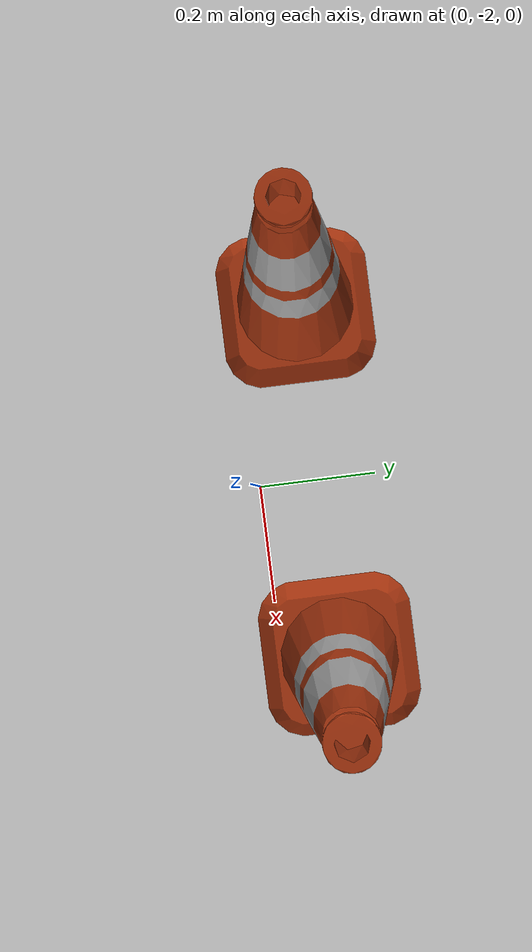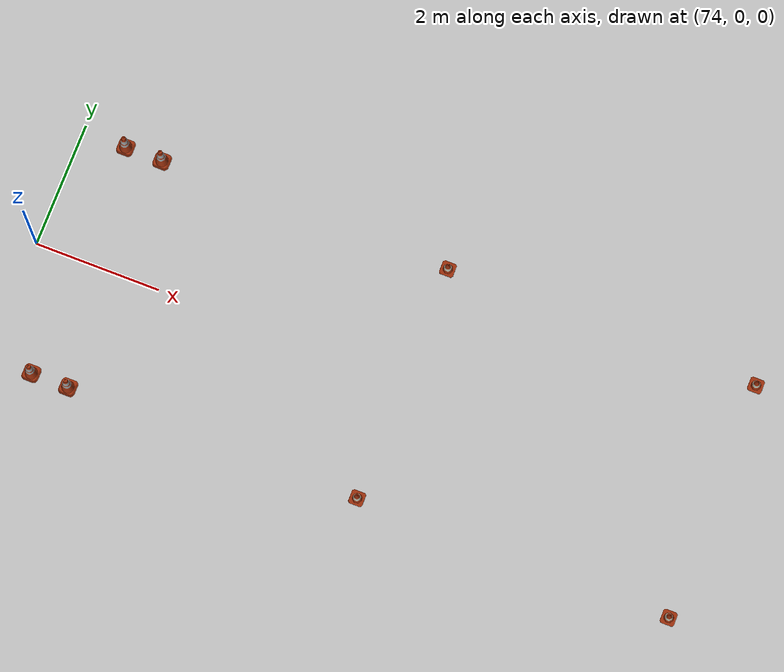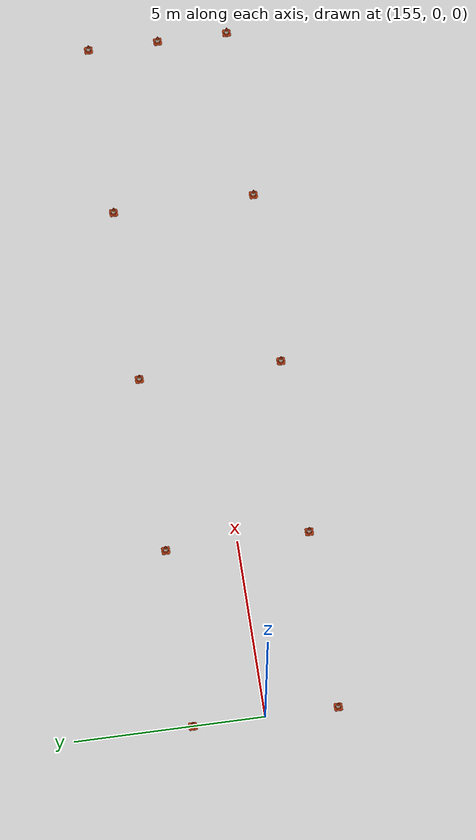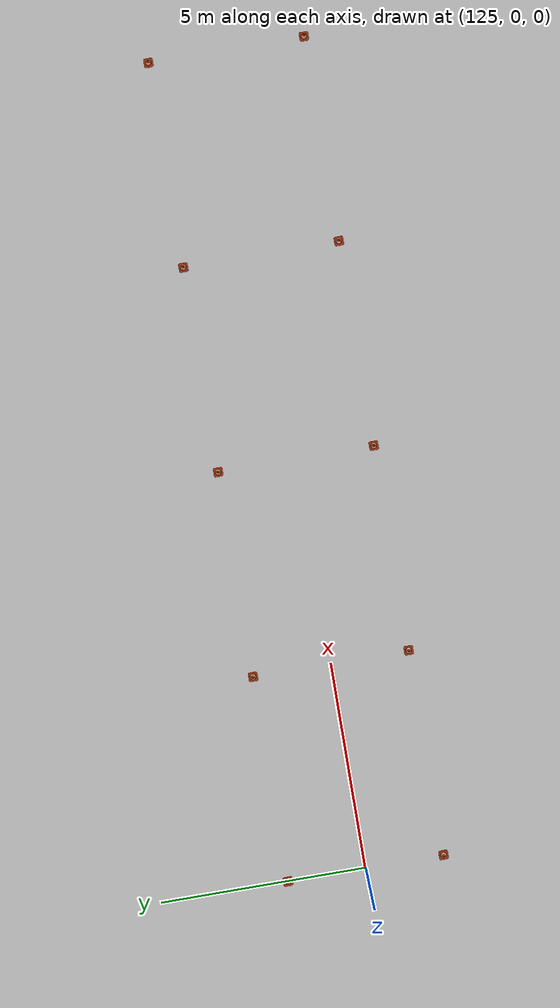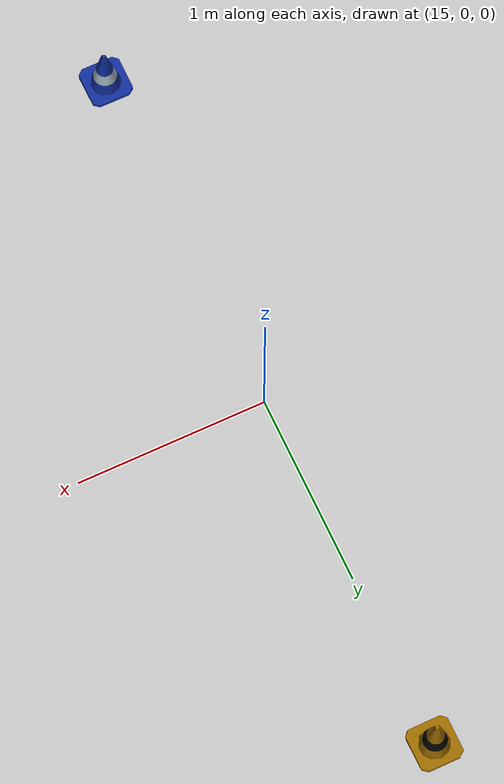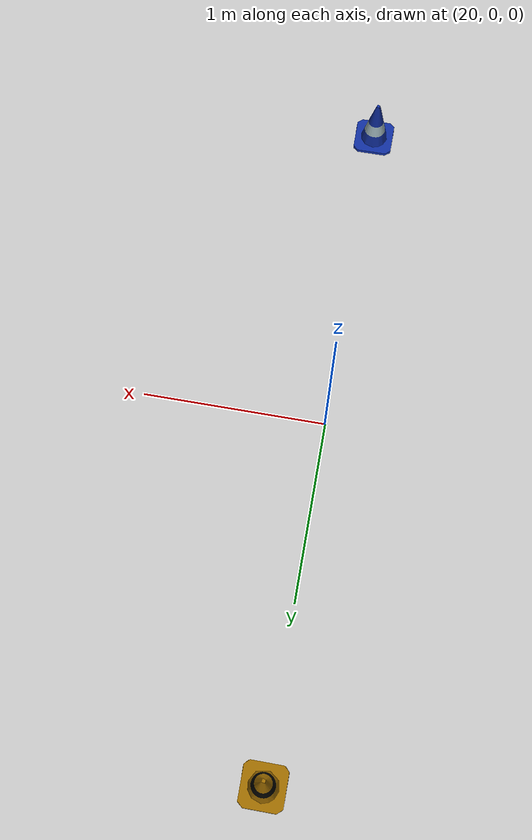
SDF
<?xml version="1.0"?>
<sdf version="1.8">
    <world name="acceleration">

        <scene>
            <grid>false</grid>
        </scene>

        <plugin
            filename="gz-sim-physics-system"
            name="gz::sim::systems::Physics">
        </plugin>

        <plugin
            filename="gz-sim-user-commands-system"
            name="gz::sim::systems::UserCommands">
        </plugin>

        <plugin
            filename="gz-sim-scene-broadcaster-system"
            name="gz::sim::systems::SceneBroadcaster">
        </plugin>

        <plugin
            filename="gz-sim-contact-system"
            name="gz::sim::systems::Contact">
        </plugin>

        <plugin
            filename="gz-sim-sensors-system"
            name="gz::sim::systems::Sensors">
        </plugin>

        <physics name="physics_ode_1ms" type="ode">
            <max_step_size>0.01</max_step_size>
            <real_time_factor>1.0</real_time_factor>
        </physics>

        <gui fullscreen="0">
            <!-- 3D scene -->
            <plugin filename="MinimalScene" name="3D View">
                <gz-gui>
                    <title>3D View</title>
                    <property type="bool" key="showTitleBar">false</property>
                    <property type="string" key="state">docked</property>
                </gz-gui>

                <engine>ogre2</engine>
                <scene>scene</scene>
                <ambient_light>0.4 0.4 0.4</ambient_light>
                <background_color>0.8 0.8 0.8</background_color>
                <camera_pose>-6 0 6 0 0.5 0</camera_pose>
                <camera_clip>
                    <near>0.25</near>
                    <far>25000</far>
                </camera_clip>
            </plugin>

            <plugin filename="GzSceneManager" name="Scene Manager">
                <gz-gui>
                    <property key="resizable" type="bool">false</property>
                    <property key="width" type="double">5</property>
                    <property key="height" type="double">5</property>
                    <property key="state" type="string">floating</property>
                    <property key="showTitleBar" type="bool">false</property>
                </gz-gui>
            </plugin>

            <!-- World control -->
            <plugin filename="WorldControl" name="World control">
                <gz-gui>
                    <title>World control</title>
                    <property type="bool" key="showTitleBar">false</property>
                    <property type="bool" key="resizable">false</property>
                    <property type="double" key="height">72</property>
                    <property type="double" key="width">121</property>
                    <property type="double" key="z">1</property>

                    <property type="string" key="state">floating</property>
                    <anchors target="3D View">
                        <line own="left" target="left" />
                        <line own="bottom" target="bottom" />
                    </anchors>
                </gz-gui>

                <play_pause>true</play_pause>
                <step>true</step>
                <start_paused>false</start_paused>
                <service>/world/acceleration/control</service>
                <stats_topic>/world/acceleration/stats</stats_topic>
            </plugin>

            <!-- Entity tree -->
            <plugin filename="EntityTree" name="Entity tree">
            </plugin>

        </gui>

        <light type="directional" name="sun">
            <cast_shadows>true</cast_shadows>
            <pose>0 0 10 0 0 0</pose>
            <diffuse>0.8 0.8 0.8 1</diffuse>
            <specular>0.2 0.2 0.2 1</specular>
            <attenuation>
                <range>1000</range>
                <constant>0.9</constant>
                <linear>0.01</linear>
                <quadratic>0.001</quadratic>
            </attenuation>
            <direction>-0.5 0.1 -0.9</direction>
        </light>

        <include>
            <uri>
                https://fuel.gazebosim.org/1.0/OpenRobotics/models/Ground Plane
            </uri>
            <pose> 0.0 0.0 0.0 0.0 0.0 0.0</pose>
        </include>

        <model name="acceleration_cones">
            <include>
                <uri>model://simulator_description/models/cone_blue</uri>
                <pose>5.0 -1.9 0.15 0 0 0</pose>
                <name>cone_right1</name>
            </include>
            <include>
                <uri>model://simulator_description/models/cone_blue</uri>
                <pose>10.0 -1.9 0.15 0 0 0</pose>
                <name>cone_right2</name>
            </include>
            <include>
                <uri>model://simulator_description/models/cone_blue</uri>
                <pose>15.0 -1.9 0.15 0 0 0</pose>
                <name>cone_right3</name>
            </include>
            <include>
                <uri>model://simulator_description/models/cone_blue</uri>
                <pose>20.0 -1.9 0.15 0 0 0</pose>
                <name>cone_right4</name>
            </include>
            <include>
                <uri>model://simulator_description/models/cone_blue</uri>
                <pose>25.0 -1.9 0.15 0 0 0</pose>
                <name>cone_right5</name>
            </include>
            <include>
                <uri>model://simulator_description/models/cone_blue</uri>
                <pose>30.0 -1.9 0.15 0 0 0</pose>
                <name>cone_right6</name>
            </include>
            <include>
                <uri>model://simulator_description/models/cone_blue</uri>
                <pose>35.0 -1.9 0.15 0 0 0</pose>
                <name>cone_right7</name>
            </include>
            <include>
                <uri>model://simulator_description/models/cone_blue</uri>
                <pose>40.0 -1.9 0.15 0 0 0</pose>
                <name>cone_right8</name>
            </include>
            <include>
                <uri>model://simulator_description/models/cone_blue</uri>
                <pose>45.0 -1.9 0.15 0 0 0</pose>
                <name>cone_right9</name>
            </include>
            <include>
                <uri>model://simulator_description/models/cone_blue</uri>
                <pose>50.0 -1.9 0.15 0 0 0</pose>
                <name>cone_right10</name>
            </include>
            <include>
                <uri>model://simulator_description/models/cone_blue</uri>
                <pose>55.0 -1.9 0.15 0 0 0</pose>
                <name>cone_right11</name>
            </include>
            <include>
                <uri>model://simulator_description/models/cone_blue</uri>
                <pose>60.0 -1.9 0.15 0 0 0</pose>
                <name>cone_right12</name>
            </include>
            <include>
                <uri>model://simulator_description/models/cone_blue</uri>
                <pose>65.0 -1.9 0.15 0 0 0</pose>
                <name>cone_right13</name>
            </include>
            <include>
                <uri>model://simulator_description/models/cone_blue</uri>
                <pose>70.0 -1.9 0.15 0 0 0</pose>
                <name>cone_right14</name>
            </include>
            <include>
                <uri>model://simulator_description/models/cone_yellow</uri>
                <pose>5.0 1.9 0.15 0 0 0</pose>
                <name>cone_left1</name>
            </include>
            <include>
                <uri>model://simulator_description/models/cone_yellow</uri>
                <pose>10.0 1.9 0.15 0 0 0</pose>
                <name>cone_left2</name>
            </include>
            <include>
                <uri>model://simulator_description/models/cone_yellow</uri>
                <pose>15.0 1.9 0.15 0 0 0</pose>
                <name>cone_left3</name>
            </include>
            <include>
                <uri>model://simulator_description/models/cone_yellow</uri>
                <pose>20.0 1.9 0.15 0 0 0</pose>
                <name>cone_left4</name>
            </include>
            <include>
                <uri>model://simulator_description/models/cone_yellow</uri>
                <pose>25.0 1.9 0.15 0 0 0</pose>
                <name>cone_left5</name>
            </include>
            <include>
                <uri>model://simulator_description/models/cone_yellow</uri>
                <pose>30.0 1.9 0.15 0 0 0</pose>
                <name>cone_left6</name>
            </include>
            <include>
                <uri>model://simulator_description/models/cone_yellow</uri>
                <pose>35.0 1.9 0.15 0 0 0</pose>
                <name>cone_left7</name>
            </include>
            <include>
                <uri>model://simulator_description/models/cone_yellow</uri>
                <pose>40.0 1.9 0.15 0 0 0</pose>
                <name>cone_left8</name>
            </include>
            <include>
                <uri>model://simulator_description/models/cone_yellow</uri>
                <pose>45.0 1.9 0.15 0 0 0</pose>
                <name>cone_left9</name>
            </include>
            <include>
                <uri>model://simulator_description/models/cone_yellow</uri>
                <pose>50.0 1.9 0.15 0 0 0</pose>
                <name>cone_left10</name>
            </include>
            <include>
                <uri>model://simulator_description/models/cone_yellow</uri>
                <pose>55.0 1.9 0.15 0 0 0</pose>
                <name>cone_left11</name>
            </include>
            <include>
                <uri>model://simulator_description/models/cone_yellow</uri>
                <pose>60.0 1.9 0.15 0 0 0</pose>
                <name>cone_left12</name>
            </include>
            <include>
                <uri>model://simulator_description/models/cone_yellow</uri>
                <pose>65.0 1.9 0.15 0 0 0</pose>
                <name>cone_left13</name>
            </include>
            <include>
                <uri>model://simulator_description/models/cone_yellow</uri>
                <pose>70.0 1.9 0.15 0 0 0</pose>
                <name>cone_left14</name>
            </include>
            <include>
                <uri>model://simulator_description/models/cone_orange</uri>
                <pose>80.0 1.9 0.15 0 0 0</pose>
                <name>cone_orange1</name>
            </include>
            <include>
                <uri>model://simulator_description/models/cone_orange</uri>
                <pose>80.0 -1.9 0.15 0 0 0</pose>
                <name>cone_orange2</name>
            </include>
            <include>
                <uri>model://simulator_description/models/cone_orange</uri>
                <pose>85.0 1.9 0.15 0 0 0</pose>
                <name>cone_orange3</name>
            </include>
            <include>
                <uri>model://simulator_description/models/cone_orange</uri>
                <pose>85.0 -1.9 0.15 0 0 0</pose>
                <name>cone_orange4</name>
            </include>
            <include>
                <uri>model://simulator_description/models/cone_orange</uri>
                <pose>90.0 1.9 0.15 0 0 0</pose>
                <name>cone_orange5</name>
            </include>
            <include>
                <uri>model://simulator_description/models/cone_orange</uri>
                <pose>90.0 -1.9 0.15 0 0 0</pose>
                <name>cone_orange6</name>
            </include>
            <include>
                <uri>model://simulator_description/models/cone_orange</uri>
                <pose>95.0 1.9 0.15 0 0 0</pose>
                <name>cone_orange7</name>
            </include>
            <include>
                <uri>model://simulator_description/models/cone_orange</uri>
                <pose>95.0 -1.9 0.15 0 0 0</pose>
                <name>cone_orange8</name>
            </include>
            <include>
                <uri>model://simulator_description/models/cone_orange</uri>
                <pose>100.0 1.9 0.15 0 0 0</pose>
                <name>cone_orange9</name>
            </include>
            <include>
                <uri>model://simulator_description/models/cone_orange</uri>
                <pose>100.0 -1.9 0.15 0 0 0</pose>
                <name>cone_orange10</name>
            </include>
            <include>
                <uri>model://simulator_description/models/cone_orange</uri>
                <pose>105.0 1.9 0.15 0 0 0</pose>
                <name>cone_orange11</name>
            </include>
            <include>
                <uri>model://simulator_description/models/cone_orange</uri>
                <pose>105.0 -1.9 0.15 0 0 0</pose>
                <name>cone_orange12</name>
            </include>
            <include>
                <uri>model://simulator_description/models/cone_orange</uri>
                <pose>110.0 1.9 0.15 0 0 0</pose>
                <name>cone_orange13</name>
            </include>
            <include>
                <uri>model://simulator_description/models/cone_orange</uri>
                <pose>110.0 -1.9 0.15 0 0 0</pose>
                <name>cone_orange14</name>
            </include>
            <include>
                <uri>model://simulator_description/models/cone_orange</uri>
                <pose>115.0 1.9 0.15 0 0 0</pose>
                <name>cone_orange15</name>
            </include>
            <include>
                <uri>model://simulator_description/models/cone_orange</uri>
                <pose>115.0 -1.9 0.15 0 0 0</pose>
                <name>cone_orange16</name>
            </include>
            <include>
                <uri>model://simulator_description/models/cone_orange</uri>
                <pose>120.0 1.9 0.15 0 0 0</pose>
                <name>cone_orange17</name>
            </include>
            <include>
                <uri>model://simulator_description/models/cone_orange</uri>
                <pose>120.0 -1.9 0.15 0 0 0</pose>
                <name>cone_orange18</name>
            </include>
            <include>
                <uri>model://simulator_description/models/cone_orange</uri>
                <pose>125.0 1.9 0.15 0 0 0</pose>
                <name>cone_orange19</name>
            </include>
            <include>
                <uri>model://simulator_description/models/cone_orange</uri>
                <pose>125.0 -1.9 0.15 0 0 0</pose>
                <name>cone_orange20</name>
            </include>
            <include>
                <uri>model://simulator_description/models/cone_orange</uri>
                <pose>130.0 1.9 0.15 0 0 0</pose>
                <name>cone_orange21</name>
            </include>
            <include>
                <uri>model://simulator_description/models/cone_orange</uri>
                <pose>130.0 -1.9 0.15 0 0 0</pose>
                <name>cone_orange22</name>
            </include>
            <include>
                <uri>model://simulator_description/models/cone_orange</uri>
                <pose>135.0 1.9 0.15 0 0 0</pose>
                <name>cone_orange23</name>
            </include>
            <include>
                <uri>model://simulator_description/models/cone_orange</uri>
                <pose>135.0 -1.9 0.15 0 0 0</pose>
                <name>cone_orange24</name>
            </include>
            <include>
                <uri>model://simulator_description/models/cone_orange</uri>
                <pose>140.0 1.9 0.15 0 0 0</pose>
                <name>cone_orange25</name>
            </include>
            <include>
                <uri>model://simulator_description/models/cone_orange</uri>
                <pose>140.0 -1.9 0.15 0 0 0</pose>
                <name>cone_orange26</name>
            </include>
            <include>
                <uri>model://simulator_description/models/cone_orange</uri>
                <pose>145.0 1.9 0.15 0 0 0</pose>
                <name>cone_orange27</name>
            </include>
            <include>
                <uri>model://simulator_description/models/cone_orange</uri>
                <pose>145.0 -1.9 0.15 0 0 0</pose>
                <name>cone_orange28</name>
            </include>
            <include>
                <uri>model://simulator_description/models/cone_orange</uri>
                <pose>150.0 1.9 0.15 0 0 0</pose>
                <name>cone_orange29</name>
            </include>
            <include>
                <uri>model://simulator_description/models/cone_orange</uri>
                <pose>150.0 -1.9 0.15 0 0 0</pose>
                <name>cone_orange30</name>
            </include>
            <include>
                <uri>model://simulator_description/models/cone_orange</uri>
                <pose>155.0 1.9 0.15 0 0 0</pose>
                <name>cone_orange31</name>
            </include>
            <include>
                <uri>model://simulator_description/models/cone_orange</uri>
                <pose>155.0 -1.9 0.15 0 0 0</pose>
                <name>cone_orange32</name>
            </include>
            <include>
                <uri>model://simulator_description/models/cone_orange</uri>
                <pose>160.0 1.9 0.15 0 0 0</pose>
                <name>cone_orange33</name>
            </include>
            <include>
                <uri>model://simulator_description/models/cone_orange</uri>
                <pose>160.0 -1.9 0.15 0 0 0</pose>
                <name>cone_orange34</name>
            </include>
            <include>
                <uri>model://simulator_description/models/cone_orange</uri>
                <pose>165.0 1.9 0.15 0 0 0</pose>
                <name>cone_orange35</name>
            </include>
            <include>
                <uri>model://simulator_description/models/cone_orange</uri>
                <pose>165.0 -1.9 0.15 0 0 0</pose>
                <name>cone_orange36</name>
            </include>
            <include>
                <uri>model://simulator_description/models/cone_orange</uri>
                <pose>170.0 1.9 0.15 0 0 0</pose>
                <name>cone_orange37</name>
            </include>
            <include>
                <uri>model://simulator_description/models/cone_orange</uri>
                <pose>170.0 -1.9 0.15 0 0 0</pose>
                <name>cone_orange38</name>
            </include>
            <include>
                <uri>model://simulator_description/models/cone_orange</uri>
                <pose>175.0 1.9 0.15 0 0 0</pose>
                <name>cone_orange39</name>
            </include>
            <include>
                <uri>model://simulator_description/models/cone_orange</uri>
                <pose>175.0 -1.9 0.15 0 0 0</pose>
                <name>cone_orange40</name>
            </include>
            <include>
                <uri>model://simulator_description/models/cone_orange</uri>
                <pose>175.0 0.0 0.15 0 0 0</pose>
                <name>cone_orange41</name>
            </include>
            <include>
                <uri>model://simulator_description/models/cone_orange</uri>
                <pose>175.0 1.9 0.15 0 0 0</pose>
                <name>cone_orange42</name>
            </include>
            <include>
                <uri>model://simulator_description/models/cone_orange_big</uri>
                <pose>-0.3 1.9 0.04 0 0 0</pose>
                <name>cone_orange_big1</name>
            </include>
            <include>
                <uri>model://simulator_description/models/cone_orange_big</uri>
                <pose>-0.3 -1.9 0.04 0 0 0</pose>
                <name>cone_orange_big2</name>
            </include>
            <include>
                <uri>model://simulator_description/models/cone_orange_big</uri>
                <pose>0.3 1.9 0.04 0 0 0</pose>
                <name>cone_orange_big3</name>
            </include>
            <include>
                <uri>model://simulator_description/models/cone_orange_big</uri>
                <pose>0.3 -1.9 0.04 0 0 0</pose>
                <name>cone_orange_big4</name>
            </include>
            <include>
                <uri>model://simulator_description/models/cone_orange_big</uri>
                <pose>74.7 1.9 0.04 0 0 0</pose>
                <name>cone_orange_big5</name>
            </include>
            <include>
                <uri>model://simulator_description/models/cone_orange_big</uri>
                <pose>74.7 -1.9 0.04 0 0 0</pose>
                <name>cone_orange_big6</name>
            </include>
            <include>
                <uri>model://simulator_description/models/cone_orange_big</uri>
                <pose>75.3 1.9 0.04 0 0 0</pose>
                <name>cone_orange_big7</name>
            </include>
            <include>
                <uri>model://simulator_description/models/cone_orange_big</uri>
                <pose>75.3 -1.9 0.04 0 0 0</pose>
                <name>cone_orange_big8</name>
            </include>
        </model>
    </world>
</sdf>

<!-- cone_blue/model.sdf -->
<sdf version='1.4'>
  <model name="cone_blue">
    <link name="link">
      <collision name="collision">
        <geometry>
            <box>
              <size> 0.228 0.228 0.325 </size>
            </box>
        </geometry>
      </collision>
      <visual name="visual">
        <geometry>
          <mesh>
            <uri>model://simulator_description/meshes/cone/cone_blue.dae</uri>
            <scale>1 1 1</scale>
          </mesh>
        </geometry>
      </visual>
    </link>
  </model>
</sdf>

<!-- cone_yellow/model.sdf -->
<sdf version='1.4'>
  <model name="cone_yellow">
    <link name="link">
      <collision name="collision">
        <geometry>
            <box>
              <size> 0.228 0.228 0.325 </size>
            </box>
        </geometry>
      </collision>
      <visual name="visual">
        <geometry>
          <mesh>
            <uri>model://simulator_description/meshes/cone/cone_yellow.dae</uri>
            <scale>1 1 1</scale>
          </mesh>
        </geometry>
      </visual>
    </link>
  </model>
</sdf>

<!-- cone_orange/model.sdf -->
<sdf version='1.4'>
  <model name="cone_orange">
    <link name="link">
      <collision name="collision">
        <geometry>
            <box>
              <size> 0.228 0.228 0.325 </size>
            </box>
        </geometry>
      </collision>
      <visual name="visual">
        <geometry>
          <mesh>
            <uri>model://simulator_description/meshes/cone/cone_orange.dae</uri>
            <scale>1 1 1</scale>
          </mesh>
        </geometry>
      </visual>
    </link>
  </model>
</sdf>

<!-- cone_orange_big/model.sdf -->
<sdf version='1.4'>
  <model name="cone_orange_big">
    <link name="link">
      <collision name="collision">
        <geometry>
            <box>
              <size> 0.285 0.285 0.505 </size>
            </box>
        </geometry>
      </collision>
      <visual name="visual">
        <geometry>
          <mesh>
            <uri>model://simulator_description/meshes/cone/cone_orange_big.dae</uri>
            <scale>1 1 1</scale>
          </mesh>
        </geometry>
      </visual>
    </link>
  </model>
</sdf>
